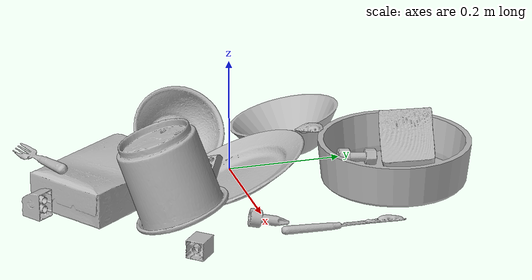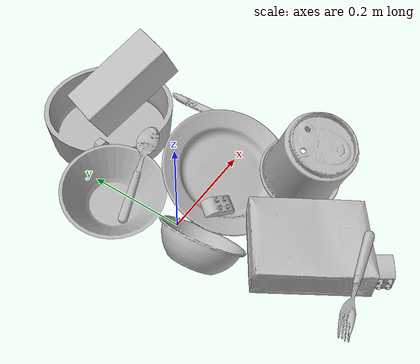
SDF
<sdf version="1.4">
  <world name="default">
    <light name="light1" type="point">
      <pose>0 0 1 0 0 0</pose>
      <diffuse>3 3 3 1</diffuse>
      <specular>3 3 3 1</specular>
    </light>
    <light name="light2" type="point">
      <pose>0 0.5 2 0 0 0</pose>
      <diffuse>1 1 1 1</diffuse>
      <specular>1 1 1 1</specular>
    </light>
    <light name="light3" type="point">
      <pose>0 0.5 2 0 0 0</pose>
      <diffuse>3 3 3 1</diffuse>
      <specular>3 3 3 1</specular>
    </light>
    <scene>
      <ambient>0.7 0.7 0.7</ambient>
    </scene>
    <model name="plate1">
      <link name="link_plate1">
        <collision name="default">
          <geometry>
            <mesh>
              <uri>model://pan_tefal/collision_meshes/collision.obj</uri>
              <scale>1.0 1.0 1.0</scale>
            </mesh>
          </geometry>
          <surface>
            <friction>
              <ode>
                <mu>0.5</mu>
                <mu2>0.5</mu2>
              </ode>
            </friction>
          <contact>
        <ode>
            <max_vel>0</max_vel>
            <min_depth>0.0001</min_depth>
            <kp>1e8</kp>
        </ode>
    </contact></surface>
        </collision>
        <visual name="default">
          <geometry>
            <mesh>
              <uri>model://pan_tefal/visual_meshes/visual.dae</uri>
              <scale>1.0 1.0 1.0</scale>
            </mesh>
          </geometry>
        </visual>
        <inertial>
          <mass>1.083925485610962</mass>
          <pose>-0.00018002053548116237 3.279013617429882e-05 -0.00851493701338768 0.000819031166138591 -0.00033013701589440335 -0.33186472787035126</pose>
          <inertia>
            <ixx>0.0074822875</ixx>
            <iyy>0.0075305253</iyy>
            <izz>0.013773448</izz>
            <ixy>0</ixy>
            <ixz>0</ixz>
            <iyz>0</iyz>
          </inertia>
        </inertial>
      </link>
      <pose>0.12180729955434799 0.26036641001701355 0.038049980998039246 -1.1542960749126049e-07 -8.703471904485069e-07 2.80163363301852</pose>
    </model>
    <model name="plate2">
      <link name="link_plate2">
        <collision name="default">
          <geometry>
            <mesh>
              <uri>model://plate/collision_meshes/collision.obj</uri>
              <scale>1.0 1.0 1.0</scale>
            </mesh>
          </geometry>
          <surface>
            <friction>
              <ode>
                <mu>0.5</mu>
                <mu2>0.5</mu2>
              </ode>
            </friction>
          <contact>
        <ode>
            <max_vel>0</max_vel>
            <min_depth>0.0001</min_depth>
            <kp>1e8</kp>
        </ode>
    </contact></surface>
        </collision>
        <visual name="default">
          <geometry>
            <mesh>
              <uri>model://plate/visual_meshes/visual.dae</uri>
              <scale>1.0 1.0 1.0</scale>
            </mesh>
          </geometry>
        </visual>
        <inertial>
          <mass>0.26740342378616333</mass>
          <pose>-0.00060446304269135 0.00027825793949887156 -0.0010561994276940823 0.0022187903743134635 -0.0032254779444460427 0.4526079808055429</pose>
          <inertia>
            <ixx>0.0012509191</ixx>
            <iyy>0.0012389544</iyy>
            <izz>0.00244661</izz>
            <ixy>0</ixy>
            <ixz>0</ixz>
            <iyz>0</iyz>
          </inertia>
        </inertial>
      </link>
      <pose>0.13037867844104767 -0.025421179831027985 0.04447416961193085 -0.33454121067587034 -0.23791515468960345 2.221262742415074</pose>
    </model>
    <model name="bowl1">
      <link name="link_bowl1">
        <collision name="default">
          <geometry>
            <mesh>
              <uri>model://bowl/collision_meshes/collision.obj</uri>
              <scale>1.0 1.0 1.0</scale>
            </mesh>
          </geometry>
          <surface>
            <friction>
              <ode>
                <mu>0.5</mu>
                <mu2>0.5</mu2>
              </ode>
            </friction>
          <contact>
        <ode>
            <max_vel>0</max_vel>
            <min_depth>0.0001</min_depth>
            <kp>1e8</kp>
        </ode>
    </contact></surface>
        </collision>
        <visual name="default">
          <geometry>
            <mesh>
              <uri>model://bowl/visual_meshes/visual.dae</uri>
              <scale>1.0 1.0 1.0</scale>
            </mesh>
          </geometry>
        </visual>
        <inertial>
          <mass>0.062040042132139206</mass>
          <pose>0.00020445157133508474 -0.001030211104080081 -0.0008042659028433263 -0.01576411046463803 0.014546752923574583 0.7140383763158871</pose>
          <inertia>
            <ixx>0.00014251085</ixx>
            <iyy>0.0001393266</iyy>
            <izz>0.00023975229</izz>
            <ixy>0</ixy>
            <ixz>0</ixz>
            <iyz>0</iyz>
          </inertia>
        </inertial>
      </link>
      <pose>-0.053053367882966995 -0.08144480735063553 0.053067952394485474 -0.5047114565935105 -0.7111733000073646 -2.378153666525021</pose>
    </model>
    <model name="bowl2">
      <link name="link_bowl2">
        <collision name="default">
          <geometry>
            <mesh>
              <uri>model://bowl_a/collision_meshes/collision.obj</uri>
              <scale>1.0 1.0 1.0</scale>
            </mesh>
          </geometry>
          <surface>
            <friction>
              <ode>
                <mu>0.5</mu>
                <mu2>0.5</mu2>
              </ode>
            </friction>
          <contact>
        <ode>
            <max_vel>0</max_vel>
            <min_depth>0.0001</min_depth>
            <kp>1e8</kp>
        </ode>
    </contact></surface>
        </collision>
        <visual name="default">
          <geometry>
            <mesh>
              <uri>model://bowl_a/visual_meshes/visual.dae</uri>
              <scale>1.0 1.0 1.0</scale>
            </mesh>
          </geometry>
        </visual>
        <inertial>
          <mass>0.2882154881954193</mass>
          <pose>0.00027867534663528204 4.731079752673395e-05 -0.0013765293406322598 -0.0009805311525578244 -0.0010938248781945461 -0.19124031319294812</pose>
          <inertia>
            <ixx>0.00082056265</ixx>
            <iyy>0.0008256004</iyy>
            <izz>0.001459402</izz>
            <ixy>0</ixy>
            <ixz>0</ixz>
            <iyz>0</iyz>
          </inertia>
        </inertial>
      </link>
      <pose>-0.04039014130830765 0.11683516204357147 0.04222262650728226 0.22666902256233903 -0.014982515683468717 -0.42604877211842435</pose>
    </model>
    <model name="silverware1">
      <link name="link_silverware1">
        <collision name="default">
          <geometry>
            <mesh>
              <uri>model://fork/collision_meshes/collision.obj</uri>
              <scale>1.0 1.0 1.0</scale>
            </mesh>
          </geometry>
          <surface>
            <friction>
              <ode>
                <mu>0.5</mu>
                <mu2>0.5</mu2>
              </ode>
            </friction>
          <contact>
        <ode>
            <max_vel>0</max_vel>
            <min_depth>0.0001</min_depth>
            <kp>1e8</kp>
        </ode>
    </contact></surface>
        </collision>
        <visual name="default">
          <geometry>
            <mesh>
              <uri>model://fork/visual_meshes/visual.dae</uri>
              <scale>1.0 1.0 1.0</scale>
            </mesh>
          </geometry>
        </visual>
        <inertial>
          <mass>0.01398836076259613</mass>
          <pose>-0.02957003563642502 0.00046588244731538 0.0003218861238565296 -0.013550934691899108 -0.010977833142804767 0.01445389655901604</pose>
          <inertia>
            <ixx>4.903713e-07</ixx>
            <iyy>3.6519592e-05</iyy>
            <izz>3.673893e-05</izz>
            <ixy>0</ixy>
            <ixz>0</ixz>
            <iyz>0</iyz>
          </inertia>
        </inertial>
      </link>
      <pose>0.028577223420143127 -0.33700406551361084 0.06849274039268494 -0.4609504505097353 0.17996321373761542 -2.9321584752250445</pose>
    </model>
    <model name="box1">
      <link name="link_box1">
        <collision name="default">
          <geometry>
            <mesh>
              <uri>model://cracker_box/collision_meshes/collision.obj</uri>
              <scale>1.0 1.0 1.0</scale>
            </mesh>
          </geometry>
          <surface>
            <friction>
              <ode>
                <mu>0.5</mu>
                <mu2>0.5</mu2>
              </ode>
            </friction>
          <contact>
        <ode>
            <max_vel>0</max_vel>
            <min_depth>0.0001</min_depth>
            <kp>1e8</kp>
        </ode>
    </contact></surface>
        </collision>
        <visual name="default">
          <geometry>
            <mesh>
              <uri>model://cracker_box/visual_meshes/visual.dae</uri>
              <scale>1.0 1.0 1.0</scale>
            </mesh>
          </geometry>
        </visual>
        <inertial>
          <mass>3.3038947582244873</mass>
          <pose>0.0009464139584451914 0.00025434247800149024 -0.0017029535956680775 -0.00031620753779881404 -0.011106489600569465 0.002546794535826719</pose>
          <inertia>
            <ixx>0.008403633</ixx>
            <iyy>0.013876048</iyy>
            <izz>0.019802397</izz>
            <ixy>0</ixy>
            <ixz>0</ixz>
            <iyz>0</iyz>
          </inertia>
        </inertial>
      </link>
      <pose>0.07249417155981064 -0.23249147832393646 0.03901262953877449 -0.03287827176025909 -0.02423786267160639 2.1514403106170232</pose>
    </model>
    <model name="box2">
      <link name="link_box2">
        <collision name="default">
          <geometry>
            <mesh>
              <uri>model://wood_block/collision_meshes/collision.obj</uri>
              <scale>1.0 1.0 1.0</scale>
            </mesh>
          </geometry>
          <surface>
            <friction>
              <ode>
                <mu>0.5</mu>
                <mu2>0.5</mu2>
              </ode>
            </friction>
          <contact>
        <ode>
            <max_vel>0</max_vel>
            <min_depth>0.0001</min_depth>
            <kp>1e8</kp>
        </ode>
    </contact></surface>
        </collision>
        <visual name="default">
          <geometry>
            <mesh>
              <uri>model://wood_block/visual_meshes/visual.dae</uri>
              <scale>1.0 1.0 1.0</scale>
            </mesh>
          </geometry>
        </visual>
        <inertial>
          <mass>1.8317598104476929</mass>
          <pose>-5.813315510749817e-06 -0.000570809468626976 0.0002640858292579651 -0.05220774405774941 -0.005192695034541599 -0.006861378043904631</pose>
          <inertia>
            <ixx>0.0024511719</ixx>
            <iyy>0.0077432534</iyy>
            <izz>0.007714289</izz>
            <ixy>0</ixy>
            <ixz>0</ixz>
            <iyz>0</iyz>
          </inertia>
        </inertial>
      </link>
      <pose>0.17658106982707977 0.26336798071861267 0.09685029089450836 1.6712563212496594 -0.4621434211989128 -0.34787387484028015</pose>
    </model>
    <model name="cup1">
      <link name="link_cup1">
        <collision name="default">
          <geometry>
            <mesh>
              <uri>model://f_cups/collision_meshes/collision.obj</uri>
              <scale>2.0 2.0 2.0</scale>
            </mesh>
          </geometry>
          <surface>
            <friction>
              <ode>
                <mu>0.5</mu>
                <mu2>0.5</mu2>
              </ode>
            </friction>
          <contact>
        <ode>
            <max_vel>0</max_vel>
            <min_depth>0.0001</min_depth>
            <kp>1e8</kp>
        </ode>
    </contact></surface>
        </collision>
        <visual name="default">
          <geometry>
            <mesh>
              <uri>model://f_cups/visual_meshes/visual.dae</uri>
              <scale>2.0 2.0 2.0</scale>
            </mesh>
          </geometry>
        </visual>
        <inertial>
          <mass>0.8281989693641663</mass>
          <pose>-0.006342937704175711 -0.0012480166042223573 -0.007311076857149601 0.7862278170542254 -0.2607923358756499 -0.18237381375543787</pose>
          <inertia>
            <ixx>0.003114117</ixx>
            <iyy>0.0032667436</iyy>
            <izz>0.0034007723</izz>
            <ixy>0</ixy>
            <ixz>0</ixz>
            <iyz>0</iyz>
          </inertia>
        </inertial>
      </link>
      <pose>0.20677658915519714 -0.16018280386924744 0.09500252455472946 -3.105583680000061 -0.35077316481238197 1.0120423695137464</pose>
    </model>
    <model name="silverware2">
      <link name="link_silverware2">
        <collision name="default">
          <geometry>
            <mesh>
              <uri>model://knife/collision_meshes/collision.obj</uri>
              <scale>1.0 1.0 1.0</scale>
            </mesh>
          </geometry>
          <surface>
            <friction>
              <ode>
                <mu>0.5</mu>
                <mu2>0.5</mu2>
              </ode>
            </friction>
          <contact>
        <ode>
            <max_vel>0</max_vel>
            <min_depth>0.0001</min_depth>
            <kp>1e8</kp>
        </ode>
    </contact></surface>
        </collision>
        <visual name="default">
          <geometry>
            <mesh>
              <uri>model://knife/visual_meshes/visual.dae</uri>
              <scale>1.0 1.0 1.0</scale>
            </mesh>
          </geometry>
        </visual>
        <inertial>
          <mass>0.033610157668590546</mass>
          <pose>-0.02378525771200657 0.0015275131445378065 5.0620201363926753e-05 0.07305356746503441 0.01724842347870745 -0.0074098216508425</pose>
          <inertia>
            <ixx>9.539925e-07</ixx>
            <iyy>0.00012912478</iyy>
            <izz>0.00012943202</izz>
            <ixy>0</ixy>
            <ixz>0</ixz>
            <iyz>0</iyz>
          </inertia>
        </inertial>
      </link>
      <pose>0.2886740565299988 0.11653294414281845 0.00581076554954052 2.8893771240535915 0.025915079376341306 1.571057607081798</pose>
    </model>
    <model name="silverware3">
      <link name="link_silverware3">
        <collision name="default">
          <geometry>
            <mesh>
              <uri>model://spoon/collision_meshes/collision.obj</uri>
              <scale>1.0 1.0 1.0</scale>
            </mesh>
          </geometry>
          <surface>
            <friction>
              <ode>
                <mu>0.5</mu>
                <mu2>0.5</mu2>
              </ode>
            </friction>
          <contact>
        <ode>
            <max_vel>0</max_vel>
            <min_depth>0.0001</min_depth>
            <kp>1e8</kp>
        </ode>
    </contact></surface>
        </collision>
        <visual name="default">
          <geometry>
            <mesh>
              <uri>model://spoon/visual_meshes/visual.dae</uri>
              <scale>1.0 1.0 1.0</scale>
            </mesh>
          </geometry>
        </visual>
        <inertial>
          <mass>0.03036251850426197</mass>
          <pose>-0.005526314955204725 -0.0016034168656915426 -0.0007271655485965312 0.035217258575681115 -0.03906584346489495 0.006150616147242728</pose>
          <inertia>
            <ixx>1.6888126e-06</ixx>
            <iyy>0.00011552838</iyy>
            <izz>0.00011636122</izz>
            <ixy>0</ixy>
            <ixz>0</ixz>
            <iyz>0</iyz>
          </inertia>
        </inertial>
      </link>
      <pose>0.020641911774873734 0.10390893369913101 0.06064017489552498 -3.048474815150054 -0.5534865563761261 0.2635609899879931</pose>
    </model>
    <model name="toy1">
      <link name="link_toy1">
        <collision name="default">
          <geometry>
            <mesh>
              <uri>model://d_lego_duplo/collision_meshes/collision.obj</uri>
              <scale>1.0 1.0 1.0</scale>
            </mesh>
          </geometry>
          <surface>
            <friction>
              <ode>
                <mu>0.5</mu>
                <mu2>0.5</mu2>
              </ode>
            </friction>
          <contact>
        <ode>
            <max_vel>0</max_vel>
            <min_depth>0.0001</min_depth>
            <kp>1e8</kp>
        </ode>
    </contact></surface>
        </collision>
        <visual name="default">
          <geometry>
            <mesh>
              <uri>model://d_lego_duplo/visual_meshes/visual.dae</uri>
              <scale>1.0 1.0 1.0</scale>
            </mesh>
          </geometry>
        </visual>
        <inertial>
          <mass>0.05888136848807335</mass>
          <pose>0.00283056334592402 0.00016366125782951713 0.0008589810458943248 0.0801088994423302 -0.3835518637869403 0.0010296847698221781</pose>
          <inertia>
            <ixx>1.1398561e-05</ixx>
            <iyy>1.6177655e-05</iyy>
            <izz>1.5601077e-05</izz>
            <ixy>0</ixy>
            <ixz>0</ixz>
            <iyz>0</iyz>
          </inertia>
        </inertial>
      </link>
      <pose>0.1033499613404274 -0.3617981970310211 0.024197017773985863 1.7218787998754252 1.570791357979261 -0.8068882773091928</pose>
    </model>
    <model name="toy2">
      <link name="link_toy2">
        <collision name="default">
          <geometry>
            <mesh>
              <uri>model://d_toy_airplane/collision_meshes/collision.obj</uri>
              <scale>1.0 1.0 1.0</scale>
            </mesh>
          </geometry>
          <surface>
            <friction>
              <ode>
                <mu>0.5</mu>
                <mu2>0.5</mu2>
              </ode>
            </friction>
          <contact>
        <ode>
            <max_vel>0</max_vel>
            <min_depth>0.0001</min_depth>
            <kp>1e8</kp>
        </ode>
    </contact></surface>
        </collision>
        <visual name="default">
          <geometry>
            <mesh>
              <uri>model://d_toy_airplane/visual_meshes/visual.dae</uri>
              <scale>1.0 1.0 1.0</scale>
            </mesh>
          </geometry>
        </visual>
        <inertial>
          <mass>0.019283337518572807</mass>
          <pose>9.410297934664413e-05 -5.809335198136978e-05 -0.011728096753358841 0.00026677547083937895 0.00467899750463603 0.5194224971352938</pose>
          <inertia>
            <ixx>5.7807692e-06</ixx>
            <iyy>5.78513e-06</iyy>
            <izz>1.7452522e-06</izz>
            <ixy>0</ixy>
            <ixz>0</ixz>
            <iyz>0</iyz>
          </inertia>
        </inertial>
      </link>
      <pose>0.2510235607624054 -0.0008904347196221352 0.011649002321064472 -1.800941311583521 -0.4801606882956549 -0.06510525067659542</pose>
    </model>
    <model name="toy3">
      <link name="link_toy3">
        <collision name="default">
          <geometry>
            <mesh>
              <uri>model://b_lego_duplo/collision_meshes/collision.obj</uri>
              <scale>1.0 1.0 1.0</scale>
            </mesh>
          </geometry>
          <surface>
            <friction>
              <ode>
                <mu>0.5</mu>
                <mu2>0.5</mu2>
              </ode>
            </friction>
          <contact>
        <ode>
            <max_vel>0</max_vel>
            <min_depth>0.0001</min_depth>
            <kp>1e8</kp>
        </ode>
    </contact></surface>
        </collision>
        <visual name="default">
          <geometry>
            <mesh>
              <uri>model://b_lego_duplo/visual_meshes/visual.dae</uri>
              <scale>1.0 1.0 1.0</scale>
            </mesh>
          </geometry>
        </visual>
        <inertial>
          <mass>0.03460631147027016</mass>
          <pose>-0.00011053022171836346 -9.15238524612505e-06 0.0019294291269034147 -0.037494934713503944 -0.026353982766830427 0.45190023703794546</pose>
          <inertia>
            <ixx>7.082442e-06</ixx>
            <iyy>7.1300533e-06</iyy>
            <izz>6.310225e-06</izz>
            <ixy>0</ixy>
            <ixz>0</ixz>
            <iyz>0</iyz>
          </inertia>
        </inertial>
      </link>
      <pose>0.32706543803215027 -0.13828636705875397 0.01612129807472229 1.5723750111001875 -0.012011124611138745 -2.276531857027236</pose>
    </model>
    <model name="toy4">
      <link name="link_toy4">
        <collision name="default">
          <geometry>
            <mesh>
              <uri>model://c_toy_airplane/collision_meshes/collision.obj</uri>
              <scale>1.0 1.0 1.0</scale>
            </mesh>
          </geometry>
          <surface>
            <friction>
              <ode>
                <mu>0.5</mu>
                <mu2>0.5</mu2>
              </ode>
            </friction>
          <contact>
        <ode>
            <max_vel>0</max_vel>
            <min_depth>0.0001</min_depth>
            <kp>1e8</kp>
        </ode>
    </contact></surface>
        </collision>
        <visual name="default">
          <geometry>
            <mesh>
              <uri>model://c_toy_airplane/visual_meshes/visual.dae</uri>
              <scale>1.0 1.0 1.0</scale>
            </mesh>
          </geometry>
        </visual>
        <inertial>
          <mass>0.03008922003209591</mass>
          <pose>-0.00023024248366709799 -4.429292062013701e-07 -0.006080532446503639 -0.006192764609865116 -0.016797726061543002 0.7654936540566961</pose>
          <inertia>
            <ixx>1.3816358e-05</ixx>
            <iyy>1.3777365e-05</iyy>
            <izz>3.2438072e-06</izz>
            <ixy>0</ixy>
            <ixz>0</ixz>
            <iyz>0</iyz>
          </inertia>
        </inertial>
      </link>
      <pose>0.059744153171777725 0.213680699467659 0.02243747003376484 -1.6374160547592491 -0.8063405097177675 -0.06035462700155148</pose>
    </model>
    <model name="toy5">
      <link name="link_toy5">
        <collision name="default">
          <geometry>
            <mesh>
              <uri>model://a_lego_duplo/collision_meshes/collision.obj</uri>
              <scale>1.0 1.0 1.0</scale>
            </mesh>
          </geometry>
          <surface>
            <friction>
              <ode>
                <mu>0.5</mu>
                <mu2>0.5</mu2>
              </ode>
            </friction>
          <contact>
        <ode>
            <max_vel>0</max_vel>
            <min_depth>0.0001</min_depth>
            <kp>1e8</kp>
        </ode>
    </contact></surface>
        </collision>
        <visual name="default">
          <geometry>
            <mesh>
              <uri>model://a_lego_duplo/visual_meshes/visual.dae</uri>
              <scale>1.0 1.0 1.0</scale>
            </mesh>
          </geometry>
        </visual>
        <inertial>
          <mass>0.02472195029258728</mass>
          <pose>-0.00011337580508552492 0.00018517558055464178 0.0003692609316203743 -0.014116968053030856 -0.00012565531185804749 6.140757465531037e-05</pose>
          <inertia>
            <ixx>3.1695524e-06</ixx>
            <iyy>7.100487e-06</iyy>
            <izz>8.795534e-06</izz>
            <ixy>0</ixy>
            <ixz>0</ixz>
            <iyz>0</iyz>
          </inertia>
        </inertial>
      </link>
      <pose>0.06048058718442917 -0.054236020892858505 0.03414168581366539 -0.3188491982034943 -0.3592651311378216 2.6477944214391926</pose>
    </model>
  <physics type="ode">
      <max_contacts>50</max_contacts>
      <ode>
        <solver>
          <type>quick</type>
          <iters>75</iters>
        </solver>
        <constraints>
          <contact_max_correcting_vel>0</contact_max_correcting_vel>
          <contact_surface_layer>0</contact_surface_layer>
        </constraints>
      </ode>
    </physics></world>
</sdf>
